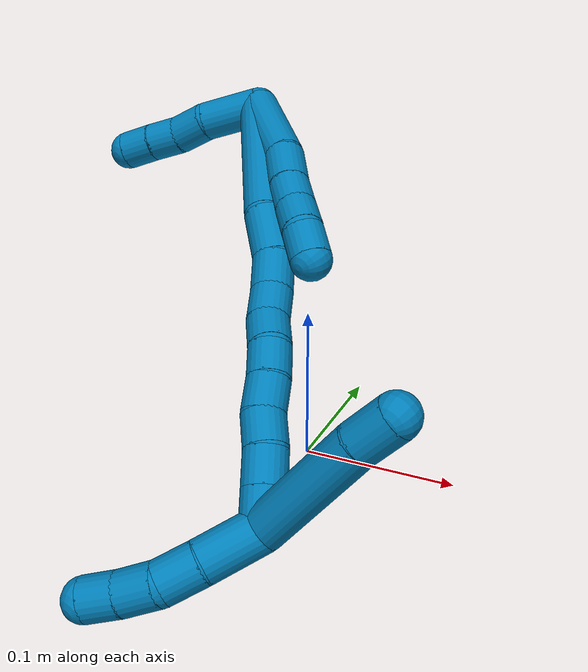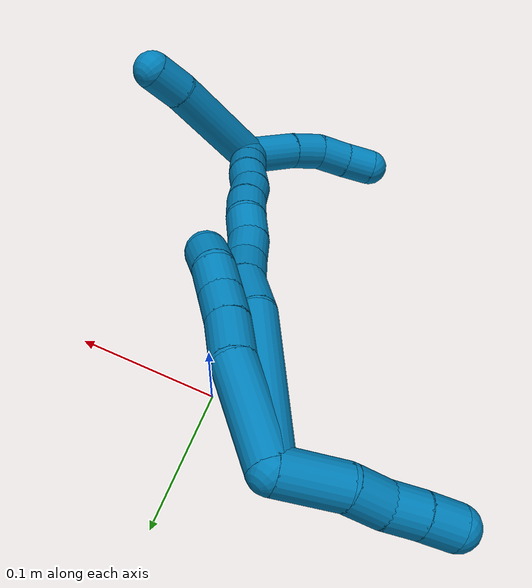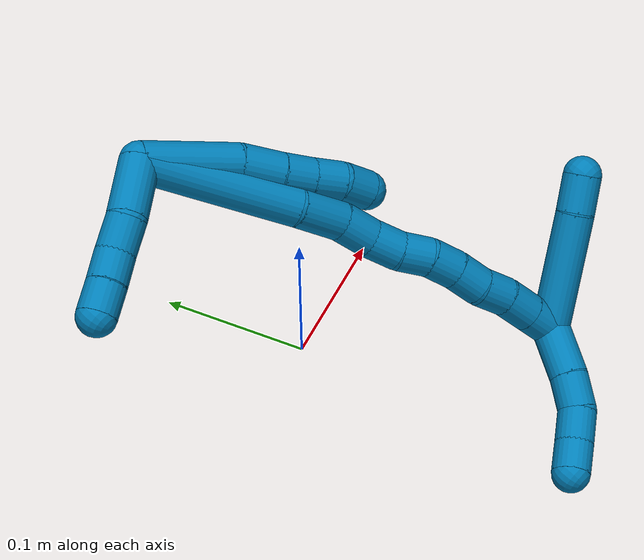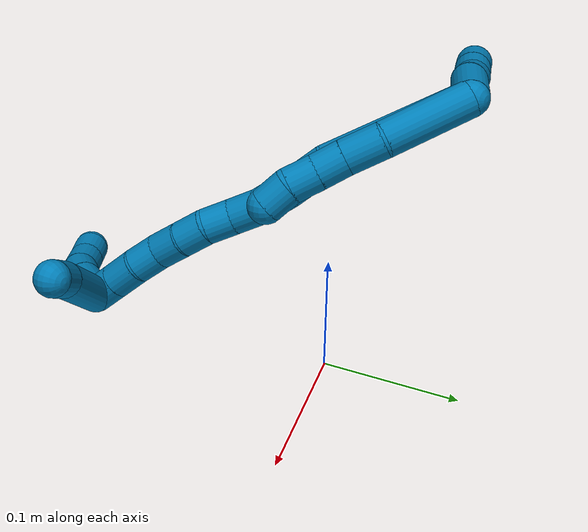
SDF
<sdf version="1.7">
 <world name="default">
  <model name="9">
   <static>0</static>
   <link name="9">
    <collision name="collision-cylinder-e_1_2_8">
     <pose>0.01332 -0.021747 0.017894 0.882294 0.441781 0.211272</pose>
     <geometry><cylinder><radius>0.0125</radius><length>0.062307</length></cylinder></geometry>
     <surface>
      <friction><ode><mu>1.16</mu><mu2>1.16</mu2><slip1>0</slip1><slip2>0</slip2></ode></friction>
      <contact><ode><kp>1e+06</kp><kd>1</kd><max_vel>0</max_vel><min_depth>0.001</min_depth></ode></contact>
     </surface>
    </collision>
    <visual name="visual-cylinder-e_1_2_8">
     <pose>0.01332 -0.021747 0.017894 0.882294 0.441781 0.211272</pose>
     <geometry><cylinder><radius>0.0125</radius><length>0.062307</length></cylinder></geometry>
     <material><ambient>0 0.490196 0.709804 1</ambient></material>
    </visual>
    <collision name="collision-cylinder-e_2_8_9">
     <pose>0.030437 -0.052526 0.04528 0.760524 0.282108 0.113395</pose>
     <geometry><cylinder><radius>0.0125</radius><length>0.027283</length></cylinder></geometry>
     <surface>
      <friction><ode><mu>1.16</mu><mu2>1.16</mu2><slip1>0</slip1><slip2>0</slip2></ode></friction>
      <contact><ode><kp>1e+06</kp><kd>1</kd><max_vel>0</max_vel><min_depth>0.001</min_depth></ode></contact>
     </surface>
    </collision>
    <visual name="visual-cylinder-e_2_8_9">
     <pose>0.030437 -0.052526 0.04528 0.760524 0.282108 0.113395</pose>
     <geometry><cylinder><radius>0.0125</radius><length>0.027283</length></cylinder></geometry>
     <material><ambient>0 0.490196 0.709804 1</ambient></material>
    </visual>
    <collision name="collision-cylinder-e_3_9_10">
     <pose>0.037232 -0.068777 0.061192 0.843988 0.300867 0.135898</pose>
     <geometry><cylinder><radius>0.0125</radius><length>0.020232</length></cylinder></geometry>
     <surface>
      <friction><ode><mu>1.16</mu><mu2>1.16</mu2><slip1>0</slip1><slip2>0</slip2></ode></friction>
      <contact><ode><kp>1e+06</kp><kd>1</kd><max_vel>0</max_vel><min_depth>0.001</min_depth></ode></contact>
     </surface>
    </collision>
    <visual name="visual-cylinder-e_3_9_10">
     <pose>0.037232 -0.068777 0.061192 0.843988 0.300867 0.135898</pose>
     <geometry><cylinder><radius>0.0125</radius><length>0.020232</length></cylinder></geometry>
     <material><ambient>0 0.490196 0.709804 1</ambient></material>
    </visual>
    <collision name="collision-cylinder-e_4_10_11">
     <pose>0.043654 -0.083034 0.073971 0.83598 0.346473 0.155137</pose>
     <geometry><cylinder><radius>0.0125</radius><length>0.020168</length></cylinder></geometry>
     <surface>
      <friction><ode><mu>1.16</mu><mu2>1.16</mu2><slip1>0</slip1><slip2>0</slip2></ode></friction>
      <contact><ode><kp>1e+06</kp><kd>1</kd><max_vel>0</max_vel><min_depth>0.001</min_depth></ode></contact>
     </surface>
    </collision>
    <visual name="visual-cylinder-e_4_10_11">
     <pose>0.043654 -0.083034 0.073971 0.83598 0.346473 0.155137</pose>
     <geometry><cylinder><radius>0.0125</radius><length>0.020168</length></cylinder></geometry>
     <material><ambient>0 0.490196 0.709804 1</ambient></material>
    </visual>
    <collision name="collision-cylinder-e_5_11_6">
     <pose>0.048087 -0.098302 0.085928 0.973557 0.100901 0.053435</pose>
     <geometry><cylinder><radius>0.0125</radius><length>0.02001</length></cylinder></geometry>
     <surface>
      <friction><ode><mu>1.16</mu><mu2>1.16</mu2><slip1>0</slip1><slip2>0</slip2></ode></friction>
      <contact><ode><kp>1e+06</kp><kd>1</kd><max_vel>0</max_vel><min_depth>0.001</min_depth></ode></contact>
     </surface>
    </collision>
    <visual name="visual-cylinder-e_5_11_6">
     <pose>0.048087 -0.098302 0.085928 0.973557 0.100901 0.053435</pose>
     <geometry><cylinder><radius>0.0125</radius><length>0.02001</length></cylinder></geometry>
     <material><ambient>0 0.490196 0.709804 1</ambient></material>
    </visual>
    <collision name="collision-cylinder-e_1_2_12">
     <pose>-0.012993 0.008888 0.010325 -0.710757 -0.761713 0.295051</pose>
     <geometry><cylinder><radius>0.0125</radius><length>0.037651</length></cylinder></geometry>
     <surface>
      <friction><ode><mu>1.16</mu><mu2>1.16</mu2><slip1>0</slip1><slip2>0</slip2></ode></friction>
      <contact><ode><kp>1e+06</kp><kd>1</kd><max_vel>0</max_vel><min_depth>0.001</min_depth></ode></contact>
     </surface>
    </collision>
    <visual name="visual-cylinder-e_1_2_12">
     <pose>-0.012993 0.008888 0.010325 -0.710757 -0.761713 0.295051</pose>
     <geometry><cylinder><radius>0.0125</radius><length>0.037651</length></cylinder></geometry>
     <material><ambient>0 0.490196 0.709804 1</ambient></material>
    </visual>
    <collision name="collision-cylinder-e_2_12_13">
     <pose>-0.035382 0.021396 0.025399 -0.651235 -1.00464 0.366772</pose>
     <geometry><cylinder><radius>0.0125</radius><length>0.022268</length></cylinder></geometry>
     <surface>
      <friction><ode><mu>1.16</mu><mu2>1.16</mu2><slip1>0</slip1><slip2>0</slip2></ode></friction>
      <contact><ode><kp>1e+06</kp><kd>1</kd><max_vel>0</max_vel><min_depth>0.001</min_depth></ode></contact>
     </surface>
    </collision>
    <visual name="visual-cylinder-e_2_12_13">
     <pose>-0.035382 0.021396 0.025399 -0.651235 -1.00464 0.366772</pose>
     <geometry><cylinder><radius>0.0125</radius><length>0.022268</length></cylinder></geometry>
     <material><ambient>0 0.490196 0.709804 1</ambient></material>
    </visual>
    <collision name="collision-cylinder-e_3_13_14">
     <pose>-0.052006 0.029772 0.035203 -0.755006 -0.805648 0.334773</pose>
     <geometry><cylinder><radius>0.0125</radius><length>0.020039</length></cylinder></geometry>
     <surface>
      <friction><ode><mu>1.16</mu><mu2>1.16</mu2><slip1>0</slip1><slip2>0</slip2></ode></friction>
      <contact><ode><kp>1e+06</kp><kd>1</kd><max_vel>0</max_vel><min_depth>0.001</min_depth></ode></contact>
     </surface>
    </collision>
    <visual name="visual-cylinder-e_3_13_14">
     <pose>-0.052006 0.029772 0.035203 -0.755006 -0.805648 0.334773</pose>
     <geometry><cylinder><radius>0.0125</radius><length>0.020039</length></cylinder></geometry>
     <material><ambient>0 0.490196 0.709804 1</ambient></material>
    </visual>
    <collision name="collision-cylinder-e_4_14_5">
     <pose>-0.066875 0.03898 0.044969 -0.757071 -0.867284 0.364233</pose>
     <geometry><cylinder><radius>0.0125</radius><length>0.020041</length></cylinder></geometry>
     <surface>
      <friction><ode><mu>1.16</mu><mu2>1.16</mu2><slip1>0</slip1><slip2>0</slip2></ode></friction>
      <contact><ode><kp>1e+06</kp><kd>1</kd><max_vel>0</max_vel><min_depth>0.001</min_depth></ode></contact>
     </surface>
    </collision>
    <visual name="visual-cylinder-e_4_14_5">
     <pose>-0.066875 0.03898 0.044969 -0.757071 -0.867284 0.364233</pose>
     <geometry><cylinder><radius>0.0125</radius><length>0.020041</length></cylinder></geometry>
     <material><ambient>0 0.490196 0.709804 1</ambient></material>
    </visual>
    <collision name="collision-cylinder-e_1_2_15">
     <pose>0.011584 -0.032823 0.037336 0.721171 0.228943 0.086653</pose>
     <geometry><cylinder><radius>0.0125</radius><length>0.102088</length></cylinder></geometry>
     <surface>
      <friction><ode><mu>1.16</mu><mu2>1.16</mu2><slip1>0</slip1><slip2>0</slip2></ode></friction>
      <contact><ode><kp>1e+06</kp><kd>1</kd><max_vel>0</max_vel><min_depth>0.001</min_depth></ode></contact>
     </surface>
    </collision>
    <visual name="visual-cylinder-e_1_2_15">
     <pose>0.011584 -0.032823 0.037336 0.721171 0.228943 0.086653</pose>
     <geometry><cylinder><radius>0.0125</radius><length>0.102088</length></cylinder></geometry>
     <material><ambient>0 0.490196 0.709804 1</ambient></material>
    </visual>
    <collision name="collision-cylinder-e_2_15_16">
     <pose>0.025333 -0.077978 0.084493 0.898169 0.136417 0.065821</pose>
     <geometry><cylinder><radius>0.0125</radius><length>0.031826</length></cylinder></geometry>
     <surface>
      <friction><ode><mu>1.16</mu><mu2>1.16</mu2><slip1>0</slip1><slip2>0</slip2></ode></friction>
      <contact><ode><kp>1e+06</kp><kd>1</kd><max_vel>0</max_vel><min_depth>0.001</min_depth></ode></contact>
     </surface>
    </collision>
    <visual name="visual-cylinder-e_2_15_16">
     <pose>0.025333 -0.077978 0.084493 0.898169 0.136417 0.065821</pose>
     <geometry><cylinder><radius>0.0125</radius><length>0.031826</length></cylinder></geometry>
     <material><ambient>0 0.490196 0.709804 1</ambient></material>
    </visual>
    <collision name="collision-cylinder-e_3_16_17">
     <pose>0.027436 -0.09795 0.103026 0.720109 -0.005288 -0.001991</pose>
     <geometry><cylinder><radius>0.0125</radius><length>0.023175</length></cylinder></geometry>
     <surface>
      <friction><ode><mu>1.16</mu><mu2>1.16</mu2><slip1>0</slip1><slip2>0</slip2></ode></friction>
      <contact><ode><kp>1e+06</kp><kd>1</kd><max_vel>0</max_vel><min_depth>0.001</min_depth></ode></contact>
     </surface>
    </collision>
    <visual name="visual-cylinder-e_3_16_17">
     <pose>0.027436 -0.09795 0.103026 0.720109 -0.005288 -0.001991</pose>
     <geometry><cylinder><radius>0.0125</radius><length>0.023175</length></cylinder></geometry>
     <material><ambient>0 0.490196 0.709804 1</ambient></material>
    </visual>
    <collision name="collision-cylinder-e_4_17_18">
     <pose>0.028676 -0.11144 0.120193 0.605053 0.12597 0.039363</pose>
     <geometry><cylinder><radius>0.0125</radius><length>0.020727</length></cylinder></geometry>
     <surface>
      <friction><ode><mu>1.16</mu><mu2>1.16</mu2><slip1>0</slip1><slip2>0</slip2></ode></friction>
      <contact><ode><kp>1e+06</kp><kd>1</kd><max_vel>0</max_vel><min_depth>0.001</min_depth></ode></contact>
     </surface>
    </collision>
    <visual name="visual-cylinder-e_4_17_18">
     <pose>0.028676 -0.11144 0.120193 0.605053 0.12597 0.039363</pose>
     <geometry><cylinder><radius>0.0125</radius><length>0.020727</length></cylinder></geometry>
     <material><ambient>0 0.490196 0.709804 1</ambient></material>
    </visual>
    <collision name="collision-cylinder-e_5_18_19">
     <pose>0.033123 -0.12343 0.13599 0.696687 0.317458 0.116133</pose>
     <geometry><cylinder><radius>0.0125</radius><length>0.02015</length></cylinder></geometry>
     <surface>
      <friction><ode><mu>1.16</mu><mu2>1.16</mu2><slip1>0</slip1><slip2>0</slip2></ode></friction>
      <contact><ode><kp>1e+06</kp><kd>1</kd><max_vel>0</max_vel><min_depth>0.001</min_depth></ode></contact>
     </surface>
    </collision>
    <visual name="visual-cylinder-e_5_18_19">
     <pose>0.033123 -0.12343 0.13599 0.696687 0.317458 0.116133</pose>
     <geometry><cylinder><radius>0.0125</radius><length>0.02015</length></cylinder></geometry>
     <material><ambient>0 0.490196 0.709804 1</ambient></material>
    </visual>
    <collision name="collision-cylinder-e_6_19_20">
     <pose>0.036977 -0.136072 0.150917 0.708492 0.07079 0.026191</pose>
     <geometry><cylinder><radius>0.0125</radius><length>0.020031</length></cylinder></geometry>
     <surface>
      <friction><ode><mu>1.16</mu><mu2>1.16</mu2><slip1>0</slip1><slip2>0</slip2></ode></friction>
      <contact><ode><kp>1e+06</kp><kd>1</kd><max_vel>0</max_vel><min_depth>0.001</min_depth></ode></contact>
     </surface>
    </collision>
    <visual name="visual-cylinder-e_6_19_20">
     <pose>0.036977 -0.136072 0.150917 0.708492 0.07079 0.026191</pose>
     <geometry><cylinder><radius>0.0125</radius><length>0.020031</length></cylinder></geometry>
     <material><ambient>0 0.490196 0.709804 1</ambient></material>
    </visual>
    <collision name="collision-cylinder-e_7_20_21">
     <pose>0.037186 -0.148681 0.166683 0.641379 -0.048831 -0.016222</pose>
     <geometry><cylinder><radius>0.0125</radius><length>0.02044</length></cylinder></geometry>
     <surface>
      <friction><ode><mu>1.16</mu><mu2>1.16</mu2><slip1>0</slip1><slip2>0</slip2></ode></friction>
      <contact><ode><kp>1e+06</kp><kd>1</kd><max_vel>0</max_vel><min_depth>0.001</min_depth></ode></contact>
     </surface>
    </collision>
    <visual name="visual-cylinder-e_7_20_21">
     <pose>0.037186 -0.148681 0.166683 0.641379 -0.048831 -0.016222</pose>
     <geometry><cylinder><radius>0.0125</radius><length>0.02044</length></cylinder></geometry>
     <material><ambient>0 0.490196 0.709804 1</ambient></material>
    </visual>
    <collision name="collision-cylinder-e_8_21_22">
     <pose>0.037662 -0.162075 0.181752 0.813425 0.096901 0.041765</pose>
     <geometry><cylinder><radius>0.0125</radius><length>0.02015</length></cylinder></geometry>
     <surface>
      <friction><ode><mu>1.16</mu><mu2>1.16</mu2><slip1>0</slip1><slip2>0</slip2></ode></friction>
      <contact><ode><kp>1e+06</kp><kd>1</kd><max_vel>0</max_vel><min_depth>0.001</min_depth></ode></contact>
     </surface>
    </collision>
    <visual name="visual-cylinder-e_8_21_22">
     <pose>0.037662 -0.162075 0.181752 0.813425 0.096901 0.041765</pose>
     <geometry><cylinder><radius>0.0125</radius><length>0.02015</length></cylinder></geometry>
     <material><ambient>0 0.490196 0.709804 1</ambient></material>
    </visual>
    <collision name="collision-cylinder-e_9_22_23">
     <pose>0.037872 -0.176648 0.196279 0.761851 -0.0723 -0.028966</pose>
     <geometry><cylinder><radius>0.0125</radius><length>0.021167</length></cylinder></geometry>
     <surface>
      <friction><ode><mu>1.16</mu><mu2>1.16</mu2><slip1>0</slip1><slip2>0</slip2></ode></friction>
      <contact><ode><kp>1e+06</kp><kd>1</kd><max_vel>0</max_vel><min_depth>0.001</min_depth></ode></contact>
     </surface>
    </collision>
    <visual name="visual-cylinder-e_9_22_23">
     <pose>0.037872 -0.176648 0.196279 0.761851 -0.0723 -0.028966</pose>
     <geometry><cylinder><radius>0.0125</radius><length>0.021167</length></cylinder></geometry>
     <material><ambient>0 0.490196 0.709804 1</ambient></material>
    </visual>
    <collision name="collision-cylinder-e_10_23_1">
     <pose>0.036374 -0.190901 0.211223 0.761631 -0.072588 -0.029072</pose>
     <geometry><cylinder><radius>0.0125</radius><length>0.020245</length></cylinder></geometry>
     <surface>
      <friction><ode><mu>1.16</mu><mu2>1.16</mu2><slip1>0</slip1><slip2>0</slip2></ode></friction>
      <contact><ode><kp>1e+06</kp><kd>1</kd><max_vel>0</max_vel><min_depth>0.001</min_depth></ode></contact>
     </surface>
    </collision>
    <visual name="visual-cylinder-e_10_23_1">
     <pose>0.036374 -0.190901 0.211223 0.761631 -0.072588 -0.029072</pose>
     <geometry><cylinder><radius>0.0125</radius><length>0.020245</length></cylinder></geometry>
     <material><ambient>0 0.490196 0.709804 1</ambient></material>
    </visual>
    <collision name="collision-cylinder-e_1_1_24">
     <pose>0.069897 -0.195871 0.202837 -3.01499 1.13819 -2.94406</pose>
     <geometry><cylinder><radius>0.0125</radius><length>0.075466</length></cylinder></geometry>
     <surface>
      <friction><ode><mu>1.16</mu><mu2>1.16</mu2><slip1>0</slip1><slip2>0</slip2></ode></friction>
      <contact><ode><kp>1e+06</kp><kd>1</kd><max_vel>0</max_vel><min_depth>0.001</min_depth></ode></contact>
     </surface>
    </collision>
    <visual name="visual-cylinder-e_1_1_24">
     <pose>0.069897 -0.195871 0.202837 -3.01499 1.13819 -2.94406</pose>
     <geometry><cylinder><radius>0.0125</radius><length>0.075466</length></cylinder></geometry>
     <material><ambient>0 0.490196 0.709804 1</ambient></material>
    </visual>
    <collision name="collision-cylinder-e_2_24_4">
     <pose>0.114986 -0.194501 0.181424 3.03235 1.08241 2.96016</pose>
     <geometry><cylinder><radius>0.0125</radius><length>0.024534</length></cylinder></geometry>
     <surface>
      <friction><ode><mu>1.16</mu><mu2>1.16</mu2><slip1>0</slip1><slip2>0</slip2></ode></friction>
      <contact><ode><kp>1e+06</kp><kd>1</kd><max_vel>0</max_vel><min_depth>0.001</min_depth></ode></contact>
     </surface>
    </collision>
    <visual name="visual-cylinder-e_2_24_4">
     <pose>0.114986 -0.194501 0.181424 3.03235 1.08241 2.96016</pose>
     <geometry><cylinder><radius>0.0125</radius><length>0.024534</length></cylinder></geometry>
     <material><ambient>0 0.490196 0.709804 1</ambient></material>
    </visual>
    <collision name="collision-cylinder-e_1_1_25">
     <pose>0.027974 -0.193886 0.233781 -0.255425 -0.452649 0.059121</pose>
     <geometry><cylinder><radius>0.0125</radius><length>0.035056</length></cylinder></geometry>
     <surface>
      <friction><ode><mu>1.16</mu><mu2>1.16</mu2><slip1>0</slip1><slip2>0</slip2></ode></friction>
      <contact><ode><kp>1e+06</kp><kd>1</kd><max_vel>0</max_vel><min_depth>0.001</min_depth></ode></contact>
     </surface>
    </collision>
    <visual name="visual-cylinder-e_1_1_25">
     <pose>0.027974 -0.193886 0.233781 -0.255425 -0.452649 0.059121</pose>
     <geometry><cylinder><radius>0.0125</radius><length>0.035056</length></cylinder></geometry>
     <material><ambient>0 0.490196 0.709804 1</ambient></material>
    </visual>
    <collision name="collision-cylinder-e_2_25_26">
     <pose>0.014265 -0.187145 0.258279 -0.289897 -0.559466 0.083816</pose>
     <geometry><cylinder><radius>0.0125</radius><length>0.022771</length></cylinder></geometry>
     <surface>
      <friction><ode><mu>1.16</mu><mu2>1.16</mu2><slip1>0</slip1><slip2>0</slip2></ode></friction>
      <contact><ode><kp>1e+06</kp><kd>1</kd><max_vel>0</max_vel><min_depth>0.001</min_depth></ode></contact>
     </surface>
    </collision>
    <visual name="visual-cylinder-e_2_25_26">
     <pose>0.014265 -0.187145 0.258279 -0.289897 -0.559466 0.083816</pose>
     <geometry><cylinder><radius>0.0125</radius><length>0.022771</length></cylinder></geometry>
     <material><ambient>0 0.490196 0.709804 1</ambient></material>
    </visual>
    <collision name="collision-cylinder-e_3_26_27">
     <pose>0.000378 -0.180118 0.273881 -0.591482 -0.79759 0.255368</pose>
     <geometry><cylinder><radius>0.0125</radius><length>0.021922</length></cylinder></geometry>
     <surface>
      <friction><ode><mu>1.16</mu><mu2>1.16</mu2><slip1>0</slip1><slip2>0</slip2></ode></friction>
      <contact><ode><kp>1e+06</kp><kd>1</kd><max_vel>0</max_vel><min_depth>0.001</min_depth></ode></contact>
     </surface>
    </collision>
    <visual name="visual-cylinder-e_3_26_27">
     <pose>0.000378 -0.180118 0.273881 -0.591482 -0.79759 0.255368</pose>
     <geometry><cylinder><radius>0.0125</radius><length>0.021922</length></cylinder></geometry>
     <material><ambient>0 0.490196 0.709804 1</ambient></material>
    </visual>
    <collision name="collision-cylinder-e_4_27_3">
     <pose>-0.014299 -0.171032 0.285949 -0.700502 -0.740639 0.281772</pose>
     <geometry><cylinder><radius>0.0125</radius><length>0.020252</length></cylinder></geometry>
     <surface>
      <friction><ode><mu>1.16</mu><mu2>1.16</mu2><slip1>0</slip1><slip2>0</slip2></ode></friction>
      <contact><ode><kp>1e+06</kp><kd>1</kd><max_vel>0</max_vel><min_depth>0.001</min_depth></ode></contact>
     </surface>
    </collision>
    <visual name="visual-cylinder-e_4_27_3">
     <pose>-0.014299 -0.171032 0.285949 -0.700502 -0.740639 0.281772</pose>
     <geometry><cylinder><radius>0.0125</radius><length>0.020252</length></cylinder></geometry>
     <material><ambient>0 0.490196 0.709804 1</ambient></material>
    </visual>
    <collision name="collision-sphere-3">
     <pose>-0.021131 -0.166215 0.291663 0 -0 0</pose>
     <geometry><sphere><radius>0.0125</radius></sphere></geometry>
     <surface>
      <friction><ode><mu>1.16</mu><mu2>1.16</mu2><slip1>0</slip1><slip2>0</slip2></ode></friction>
      <contact><ode><kp>1e+06</kp><kd>1</kd><max_vel>0</max_vel><min_depth>0.001</min_depth></ode></contact>
     </surface>
    </collision>
    <visual name="visual-sphere-3">
     <pose>-0.021131 -0.166215 0.291663 0 -0 0</pose>
     <geometry><sphere><radius>0.0125</radius></sphere></geometry>
     <material><ambient>0 0.490196 0.709804 1</ambient></material>
    </visual>
    <collision name="collision-sphere-27">
     <pose>-0.007466 -0.17585 0.280236 0 -0 0</pose>
     <geometry><sphere><radius>0.0125</radius></sphere></geometry>
     <surface>
      <friction><ode><mu>1.16</mu><mu2>1.16</mu2><slip1>0</slip1><slip2>0</slip2></ode></friction>
      <contact><ode><kp>1e+06</kp><kd>1</kd><max_vel>0</max_vel><min_depth>0.001</min_depth></ode></contact>
     </surface>
    </collision>
    <visual name="visual-sphere-27">
     <pose>-0.007466 -0.17585 0.280236 0 -0 0</pose>
     <geometry><sphere><radius>0.0125</radius></sphere></geometry>
     <material><ambient>0 0.490196 0.709804 1</ambient></material>
    </visual>
    <collision name="collision-sphere-26">
     <pose>0.008223 -0.184387 0.267526 0 -0 0</pose>
     <geometry><sphere><radius>0.0125</radius></sphere></geometry>
     <surface>
      <friction><ode><mu>1.16</mu><mu2>1.16</mu2><slip1>0</slip1><slip2>0</slip2></ode></friction>
      <contact><ode><kp>1e+06</kp><kd>1</kd><max_vel>0</max_vel><min_depth>0.001</min_depth></ode></contact>
     </surface>
    </collision>
    <visual name="visual-sphere-26">
     <pose>0.008223 -0.184387 0.267526 0 -0 0</pose>
     <geometry><sphere><radius>0.0125</radius></sphere></geometry>
     <material><ambient>0 0.490196 0.709804 1</ambient></material>
    </visual>
    <collision name="collision-sphere-25">
     <pose>0.020308 -0.189903 0.249033 0 -0 0</pose>
     <geometry><sphere><radius>0.0125</radius></sphere></geometry>
     <surface>
      <friction><ode><mu>1.16</mu><mu2>1.16</mu2><slip1>0</slip1><slip2>0</slip2></ode></friction>
      <contact><ode><kp>1e+06</kp><kd>1</kd><max_vel>0</max_vel><min_depth>0.001</min_depth></ode></contact>
     </surface>
    </collision>
    <visual name="visual-sphere-25">
     <pose>0.020308 -0.189903 0.249033 0 -0 0</pose>
     <geometry><sphere><radius>0.0125</radius></sphere></geometry>
     <material><ambient>0 0.490196 0.709804 1</ambient></material>
    </visual>
    <collision name="collision-sphere-4">
     <pose>0.125819 -0.195129 0.175702 0 -0 0</pose>
     <geometry><sphere><radius>0.0125</radius></sphere></geometry>
     <surface>
      <friction><ode><mu>1.16</mu><mu2>1.16</mu2><slip1>0</slip1><slip2>0</slip2></ode></friction>
      <contact><ode><kp>1e+06</kp><kd>1</kd><max_vel>0</max_vel><min_depth>0.001</min_depth></ode></contact>
     </surface>
    </collision>
    <visual name="visual-sphere-4">
     <pose>0.125819 -0.195129 0.175702 0 -0 0</pose>
     <geometry><sphere><radius>0.0125</radius></sphere></geometry>
     <material><ambient>0 0.490196 0.709804 1</ambient></material>
    </visual>
    <collision name="collision-sphere-24">
     <pose>0.104154 -0.193874 0.187145 0 -0 0</pose>
     <geometry><sphere><radius>0.0125</radius></sphere></geometry>
     <surface>
      <friction><ode><mu>1.16</mu><mu2>1.16</mu2><slip1>0</slip1><slip2>0</slip2></ode></friction>
      <contact><ode><kp>1e+06</kp><kd>1</kd><max_vel>0</max_vel><min_depth>0.001</min_depth></ode></contact>
     </surface>
    </collision>
    <visual name="visual-sphere-24">
     <pose>0.104154 -0.193874 0.187145 0 -0 0</pose>
     <geometry><sphere><radius>0.0125</radius></sphere></geometry>
     <material><ambient>0 0.490196 0.709804 1</ambient></material>
    </visual>
    <collision name="collision-sphere-1">
     <pose>0.03564 -0.197869 0.21853 0 -0 0</pose>
     <geometry><sphere><radius>0.0125</radius></sphere></geometry>
     <surface>
      <friction><ode><mu>1.16</mu><mu2>1.16</mu2><slip1>0</slip1><slip2>0</slip2></ode></friction>
      <contact><ode><kp>1e+06</kp><kd>1</kd><max_vel>0</max_vel><min_depth>0.001</min_depth></ode></contact>
     </surface>
    </collision>
    <visual name="visual-sphere-1">
     <pose>0.03564 -0.197869 0.21853 0 -0 0</pose>
     <geometry><sphere><radius>0.0125</radius></sphere></geometry>
     <material><ambient>0 0.490196 0.709804 1</ambient></material>
    </visual>
    <collision name="collision-sphere-23">
     <pose>0.037108 -0.183934 0.203917 0 -0 0</pose>
     <geometry><sphere><radius>0.0125</radius></sphere></geometry>
     <surface>
      <friction><ode><mu>1.16</mu><mu2>1.16</mu2><slip1>0</slip1><slip2>0</slip2></ode></friction>
      <contact><ode><kp>1e+06</kp><kd>1</kd><max_vel>0</max_vel><min_depth>0.001</min_depth></ode></contact>
     </surface>
    </collision>
    <visual name="visual-sphere-23">
     <pose>0.037108 -0.183934 0.203917 0 -0 0</pose>
     <geometry><sphere><radius>0.0125</radius></sphere></geometry>
     <material><ambient>0 0.490196 0.709804 1</ambient></material>
    </visual>
    <collision name="collision-sphere-22">
     <pose>0.038637 -0.169361 0.188641 0 -0 0</pose>
     <geometry><sphere><radius>0.0125</radius></sphere></geometry>
     <surface>
      <friction><ode><mu>1.16</mu><mu2>1.16</mu2><slip1>0</slip1><slip2>0</slip2></ode></friction>
      <contact><ode><kp>1e+06</kp><kd>1</kd><max_vel>0</max_vel><min_depth>0.001</min_depth></ode></contact>
     </surface>
    </collision>
    <visual name="visual-sphere-22">
     <pose>0.038637 -0.169361 0.188641 0 -0 0</pose>
     <geometry><sphere><radius>0.0125</radius></sphere></geometry>
     <material><ambient>0 0.490196 0.709804 1</ambient></material>
    </visual>
    <collision name="collision-sphere-21">
     <pose>0.036687 -0.154788 0.174862 0 -0 0</pose>
     <geometry><sphere><radius>0.0125</radius></sphere></geometry>
     <surface>
      <friction><ode><mu>1.16</mu><mu2>1.16</mu2><slip1>0</slip1><slip2>0</slip2></ode></friction>
      <contact><ode><kp>1e+06</kp><kd>1</kd><max_vel>0</max_vel><min_depth>0.001</min_depth></ode></contact>
     </surface>
    </collision>
    <visual name="visual-sphere-21">
     <pose>0.036687 -0.154788 0.174862 0 -0 0</pose>
     <geometry><sphere><radius>0.0125</radius></sphere></geometry>
     <material><ambient>0 0.490196 0.709804 1</ambient></material>
    </visual>
    <collision name="collision-sphere-6">
     <pose>0.049094 -0.106534 0.091526 0 -0 0</pose>
     <geometry><sphere><radius>0.0125</radius></sphere></geometry>
     <surface>
      <friction><ode><mu>1.16</mu><mu2>1.16</mu2><slip1>0</slip1><slip2>0</slip2></ode></friction>
      <contact><ode><kp>1e+06</kp><kd>1</kd><max_vel>0</max_vel><min_depth>0.001</min_depth></ode></contact>
     </surface>
    </collision>
    <visual name="visual-sphere-6">
     <pose>0.049094 -0.106534 0.091526 0 -0 0</pose>
     <geometry><sphere><radius>0.0125</radius></sphere></geometry>
     <material><ambient>0 0.490196 0.709804 1</ambient></material>
    </visual>
    <collision name="collision-sphere-11">
     <pose>0.047079 -0.090071 0.08033 0 -0 0</pose>
     <geometry><sphere><radius>0.0125</radius></sphere></geometry>
     <surface>
      <friction><ode><mu>1.16</mu><mu2>1.16</mu2><slip1>0</slip1><slip2>0</slip2></ode></friction>
      <contact><ode><kp>1e+06</kp><kd>1</kd><max_vel>0</max_vel><min_depth>0.001</min_depth></ode></contact>
     </surface>
    </collision>
    <visual name="visual-sphere-11">
     <pose>0.047079 -0.090071 0.08033 0 -0 0</pose>
     <geometry><sphere><radius>0.0125</radius></sphere></geometry>
     <material><ambient>0 0.490196 0.709804 1</ambient></material>
    </visual>
    <collision name="collision-sphere-10">
     <pose>0.04023 -0.075997 0.067612 0 -0 0</pose>
     <geometry><sphere><radius>0.0125</radius></sphere></geometry>
     <surface>
      <friction><ode><mu>1.16</mu><mu2>1.16</mu2><slip1>0</slip1><slip2>0</slip2></ode></friction>
      <contact><ode><kp>1e+06</kp><kd>1</kd><max_vel>0</max_vel><min_depth>0.001</min_depth></ode></contact>
     </surface>
    </collision>
    <visual name="visual-sphere-10">
     <pose>0.04023 -0.075997 0.067612 0 -0 0</pose>
     <geometry><sphere><radius>0.0125</radius></sphere></geometry>
     <material><ambient>0 0.490196 0.709804 1</ambient></material>
    </visual>
    <collision name="collision-sphere-9">
     <pose>0.034235 -0.061557 0.054772 0 -0 0</pose>
     <geometry><sphere><radius>0.0125</radius></sphere></geometry>
     <surface>
      <friction><ode><mu>1.16</mu><mu2>1.16</mu2><slip1>0</slip1><slip2>0</slip2></ode></friction>
      <contact><ode><kp>1e+06</kp><kd>1</kd><max_vel>0</max_vel><min_depth>0.001</min_depth></ode></contact>
     </surface>
    </collision>
    <visual name="visual-sphere-9">
     <pose>0.034235 -0.061557 0.054772 0 -0 0</pose>
     <geometry><sphere><radius>0.0125</radius></sphere></geometry>
     <material><ambient>0 0.490196 0.709804 1</ambient></material>
    </visual>
    <collision name="collision-sphere-2">
     <geometry><sphere><radius>0.0125</radius></sphere></geometry>
     <surface>
      <friction><ode><mu>1.16</mu><mu2>1.16</mu2><slip1>0</slip1><slip2>0</slip2></ode></friction>
      <contact><ode><kp>1e+06</kp><kd>1</kd><max_vel>0</max_vel><min_depth>0.001</min_depth></ode></contact>
     </surface>
    </collision>
    <visual name="visual-sphere-2">
     <geometry><sphere><radius>0.0125</radius></sphere></geometry>
     <material><ambient>0 0.490196 0.709804 1</ambient></material>
    </visual>
    <collision name="collision-sphere-19">
     <pose>0.036268 -0.129572 0.143331 0 -0 0</pose>
     <geometry><sphere><radius>0.0125</radius></sphere></geometry>
     <surface>
      <friction><ode><mu>1.16</mu><mu2>1.16</mu2><slip1>0</slip1><slip2>0</slip2></ode></friction>
      <contact><ode><kp>1e+06</kp><kd>1</kd><max_vel>0</max_vel><min_depth>0.001</min_depth></ode></contact>
     </surface>
    </collision>
    <visual name="visual-sphere-19">
     <pose>0.036268 -0.129572 0.143331 0 -0 0</pose>
     <geometry><sphere><radius>0.0125</radius></sphere></geometry>
     <material><ambient>0 0.490196 0.709804 1</ambient></material>
    </visual>
    <collision name="collision-sphere-8">
     <pose>0.02664 -0.043494 0.035788 0 -0 0</pose>
     <geometry><sphere><radius>0.0125</radius></sphere></geometry>
     <surface>
      <friction><ode><mu>1.16</mu><mu2>1.16</mu2><slip1>0</slip1><slip2>0</slip2></ode></friction>
      <contact><ode><kp>1e+06</kp><kd>1</kd><max_vel>0</max_vel><min_depth>0.001</min_depth></ode></contact>
     </surface>
    </collision>
    <visual name="visual-sphere-8">
     <pose>0.02664 -0.043494 0.035788 0 -0 0</pose>
     <geometry><sphere><radius>0.0125</radius></sphere></geometry>
     <material><ambient>0 0.490196 0.709804 1</ambient></material>
    </visual>
    <collision name="collision-sphere-12">
     <pose>-0.025985 0.017776 0.020649 0 -0 0</pose>
     <geometry><sphere><radius>0.0125</radius></sphere></geometry>
     <surface>
      <friction><ode><mu>1.16</mu><mu2>1.16</mu2><slip1>0</slip1><slip2>0</slip2></ode></friction>
      <contact><ode><kp>1e+06</kp><kd>1</kd><max_vel>0</max_vel><min_depth>0.001</min_depth></ode></contact>
     </surface>
    </collision>
    <visual name="visual-sphere-12">
     <pose>-0.025985 0.017776 0.020649 0 -0 0</pose>
     <geometry><sphere><radius>0.0125</radius></sphere></geometry>
     <material><ambient>0 0.490196 0.709804 1</ambient></material>
    </visual>
    <collision name="collision-sphere-13">
     <pose>-0.044779 0.025016 0.030149 0 -0 0</pose>
     <geometry><sphere><radius>0.0125</radius></sphere></geometry>
     <surface>
      <friction><ode><mu>1.16</mu><mu2>1.16</mu2><slip1>0</slip1><slip2>0</slip2></ode></friction>
      <contact><ode><kp>1e+06</kp><kd>1</kd><max_vel>0</max_vel><min_depth>0.001</min_depth></ode></contact>
     </surface>
    </collision>
    <visual name="visual-sphere-13">
     <pose>-0.044779 0.025016 0.030149 0 -0 0</pose>
     <geometry><sphere><radius>0.0125</radius></sphere></geometry>
     <material><ambient>0 0.490196 0.709804 1</ambient></material>
    </visual>
    <collision name="collision-sphere-14">
     <pose>-0.059233 0.034528 0.040257 0 -0 0</pose>
     <geometry><sphere><radius>0.0125</radius></sphere></geometry>
     <surface>
      <friction><ode><mu>1.16</mu><mu2>1.16</mu2><slip1>0</slip1><slip2>0</slip2></ode></friction>
      <contact><ode><kp>1e+06</kp><kd>1</kd><max_vel>0</max_vel><min_depth>0.001</min_depth></ode></contact>
     </surface>
    </collision>
    <visual name="visual-sphere-14">
     <pose>-0.059233 0.034528 0.040257 0 -0 0</pose>
     <geometry><sphere><radius>0.0125</radius></sphere></geometry>
     <material><ambient>0 0.490196 0.709804 1</ambient></material>
    </visual>
    <collision name="collision-sphere-5">
     <pose>-0.074516 0.043432 0.049681 0 -0 0</pose>
     <geometry><sphere><radius>0.0125</radius></sphere></geometry>
     <surface>
      <friction><ode><mu>1.16</mu><mu2>1.16</mu2><slip1>0</slip1><slip2>0</slip2></ode></friction>
      <contact><ode><kp>1e+06</kp><kd>1</kd><max_vel>0</max_vel><min_depth>0.001</min_depth></ode></contact>
     </surface>
    </collision>
    <visual name="visual-sphere-5">
     <pose>-0.074516 0.043432 0.049681 0 -0 0</pose>
     <geometry><sphere><radius>0.0125</radius></sphere></geometry>
     <material><ambient>0 0.490196 0.709804 1</ambient></material>
    </visual>
    <collision name="collision-sphere-15">
     <pose>0.023169 -0.065647 0.074671 0 -0 0</pose>
     <geometry><sphere><radius>0.0125</radius></sphere></geometry>
     <surface>
      <friction><ode><mu>1.16</mu><mu2>1.16</mu2><slip1>0</slip1><slip2>0</slip2></ode></friction>
      <contact><ode><kp>1e+06</kp><kd>1</kd><max_vel>0</max_vel><min_depth>0.001</min_depth></ode></contact>
     </surface>
    </collision>
    <visual name="visual-sphere-15">
     <pose>0.023169 -0.065647 0.074671 0 -0 0</pose>
     <geometry><sphere><radius>0.0125</radius></sphere></geometry>
     <material><ambient>0 0.490196 0.709804 1</ambient></material>
    </visual>
    <collision name="collision-sphere-16">
     <pose>0.027497 -0.090309 0.094316 0 -0 0</pose>
     <geometry><sphere><radius>0.0125</radius></sphere></geometry>
     <surface>
      <friction><ode><mu>1.16</mu><mu2>1.16</mu2><slip1>0</slip1><slip2>0</slip2></ode></friction>
      <contact><ode><kp>1e+06</kp><kd>1</kd><max_vel>0</max_vel><min_depth>0.001</min_depth></ode></contact>
     </surface>
    </collision>
    <visual name="visual-sphere-16">
     <pose>0.027497 -0.090309 0.094316 0 -0 0</pose>
     <geometry><sphere><radius>0.0125</radius></sphere></geometry>
     <material><ambient>0 0.490196 0.709804 1</ambient></material>
    </visual>
    <collision name="collision-sphere-17">
     <pose>0.027374 -0.105592 0.111737 0 -0 0</pose>
     <geometry><sphere><radius>0.0125</radius></sphere></geometry>
     <surface>
      <friction><ode><mu>1.16</mu><mu2>1.16</mu2><slip1>0</slip1><slip2>0</slip2></ode></friction>
      <contact><ode><kp>1e+06</kp><kd>1</kd><max_vel>0</max_vel><min_depth>0.001</min_depth></ode></contact>
     </surface>
    </collision>
    <visual name="visual-sphere-17">
     <pose>0.027374 -0.105592 0.111737 0 -0 0</pose>
     <geometry><sphere><radius>0.0125</radius></sphere></geometry>
     <material><ambient>0 0.490196 0.709804 1</ambient></material>
    </visual>
    <collision name="collision-sphere-18">
     <pose>0.029978 -0.117288 0.128649 0 -0 0</pose>
     <geometry><sphere><radius>0.0125</radius></sphere></geometry>
     <surface>
      <friction><ode><mu>1.16</mu><mu2>1.16</mu2><slip1>0</slip1><slip2>0</slip2></ode></friction>
      <contact><ode><kp>1e+06</kp><kd>1</kd><max_vel>0</max_vel><min_depth>0.001</min_depth></ode></contact>
     </surface>
    </collision>
    <visual name="visual-sphere-18">
     <pose>0.029978 -0.117288 0.128649 0 -0 0</pose>
     <geometry><sphere><radius>0.0125</radius></sphere></geometry>
     <material><ambient>0 0.490196 0.709804 1</ambient></material>
    </visual>
    <collision name="collision-sphere-20">
     <pose>0.037685 -0.142573 0.158504 0 -0 0</pose>
     <geometry><sphere><radius>0.0125</radius></sphere></geometry>
     <surface>
      <friction><ode><mu>1.16</mu><mu2>1.16</mu2><slip1>0</slip1><slip2>0</slip2></ode></friction>
      <contact><ode><kp>1e+06</kp><kd>1</kd><max_vel>0</max_vel><min_depth>0.001</min_depth></ode></contact>
     </surface>
    </collision>
    <visual name="visual-sphere-20">
     <pose>0.037685 -0.142573 0.158504 0 -0 0</pose>
     <geometry><sphere><radius>0.0125</radius></sphere></geometry>
     <material><ambient>0 0.490196 0.709804 1</ambient></material>
    </visual>
    <inertial>
     <pose>0.023201 -0.097587 0.116845 0 -0 0</pose>
     <mass>0.75</mass>
     <inertia>
      <ixx>0.000148</ixx>
      <ixy>0</ixy>
      <ixz>0</ixz>
      <iyy>0.000158</iyy>
      <iyz>0</iyz>
      <izz>5.5e-05</izz>
     </inertia>
    </inertial>
   </link>
   <pose>-0.066322 0.070507 0.209252 1.89769 -0.790936 -0.523103</pose>
  </model>
 </world>
</sdf>
